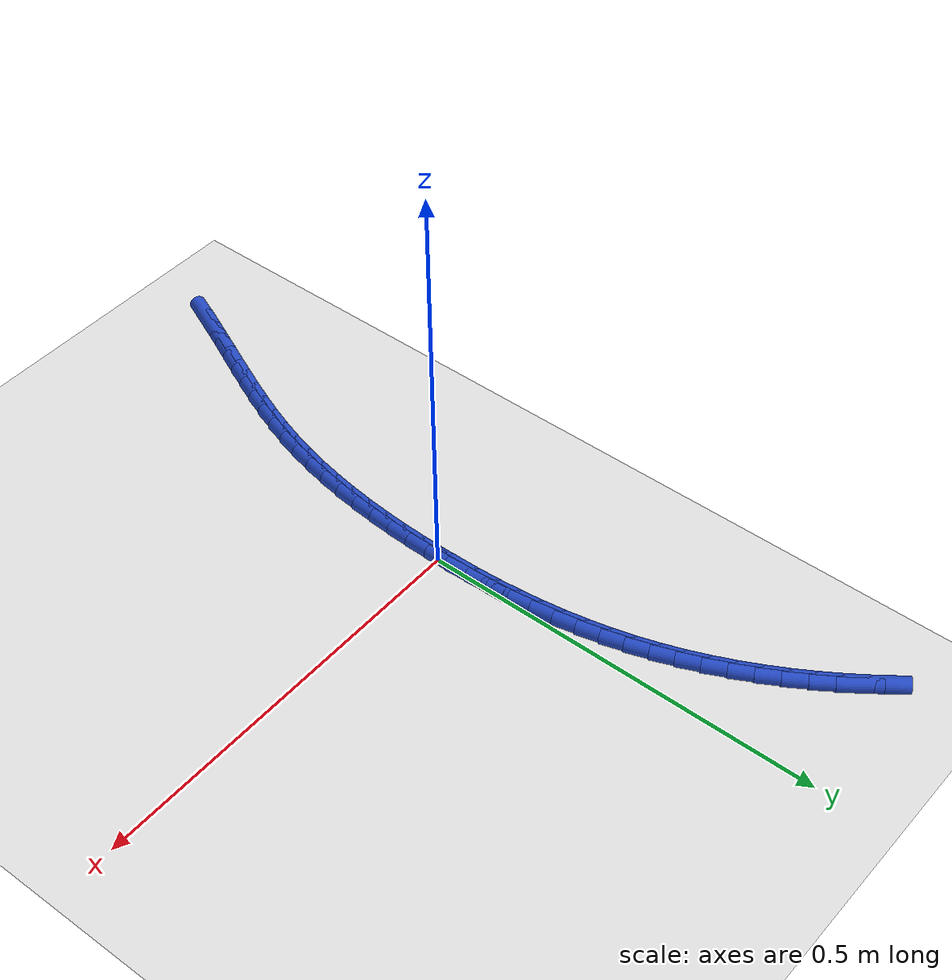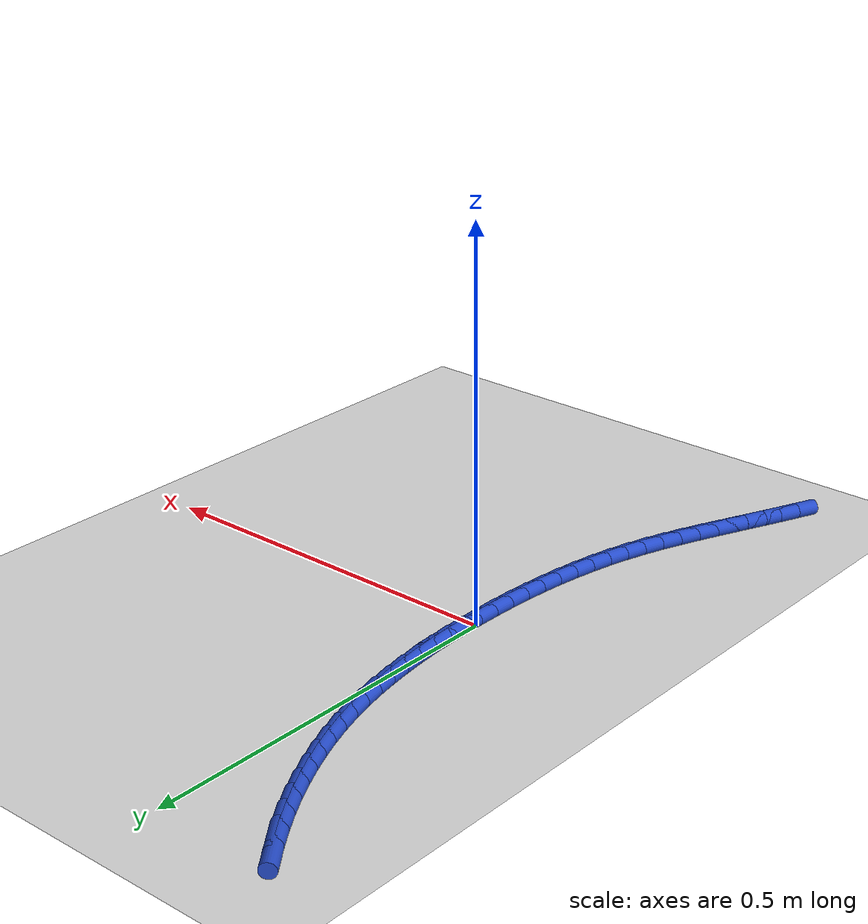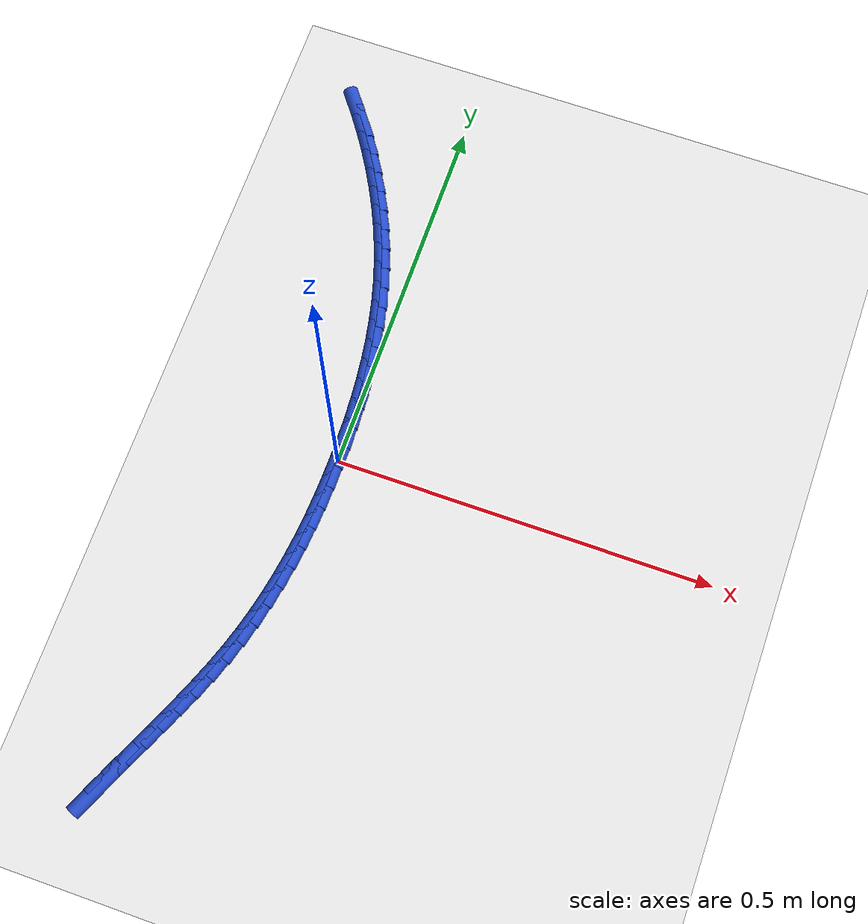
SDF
<sdf version="1.6">
 <world name="default">
  <model name="ground_plane">
   <static>1</static>
   <link name="link">
    <collision name="collision">
     <geometry><plane><normal>0 0 1</normal><size>100 100</size></plane></geometry>
     <surface><friction><ode><mu>100</mu><mu2>50</mu2></ode></friction></surface>
    </collision>
    <visual name="visual">
     <cast_shadows>0</cast_shadows>
     <geometry><plane><normal>0 0 1</normal><size>100 100</size></plane></geometry>
     <material>
      <script><uri>file://media/materials/scripts/gazebo.material</uri><name>Gazebo/WhiteGlow</name></script>
     </material>
    </visual>
   </link>
  </model>
  <model name="line">
   <link name="link_0">
    <pose>-6.938893903907228e-18 -1.3877787807814457e-17 0.01 0 1.57 -1.5612643163533644</pose>
    <collision name="collision">
     <geometry><cylinder><radius>0.01</radius><length>0.08</length></cylinder></geometry>
    </collision>
    <visual name="visual">
     <material>
      <script><name>Gazebo/Blue</name><uri>file://media/materials/scripts/gazebo.material</uri></script>
     </material>
     <geometry><cylinder><radius>0.01</radius><length>0.08</length></cylinder></geometry>
    </visual>
   </link>
   <link name="link_1">
    <pose>-0.00027130869325891474 0.028462041445249442 0.01 0 1.57 -1.5373945248930927</pose>
    <collision name="collision">
     <geometry><cylinder><radius>0.01</radius><length>0.08</length></cylinder></geometry>
    </collision>
    <visual name="visual">
     <material>
      <script><name>Gazebo/Blue</name><uri>file://media/materials/scripts/gazebo.material</uri></script>
     </material>
     <geometry><cylinder><radius>0.01</radius><length>0.08</length></cylinder></geometry>
    </visual>
   </link>
   <link name="link_2">
    <pose>-0.0012205438768052683 0.05687015384956497 0.01 0 1.57 -1.5113053776381165</pose>
    <collision name="collision">
     <geometry><cylinder><radius>0.01</radius><length>0.08</length></cylinder></geometry>
    </collision>
    <visual name="visual">
     <material>
      <script><name>Gazebo/Blue</name><uri>file://media/materials/scripts/gazebo.material</uri></script>
     </material>
     <geometry><cylinder><radius>0.01</radius><length>0.08</length></cylinder></geometry>
    </visual>
   </link>
   <link name="link_3">
    <pose>-0.002907398803572792 0.08519151125153555 0.01 0 1.57 -1.4829375800047557</pose>
    <collision name="collision">
     <geometry><cylinder><radius>0.01</radius><length>0.08</length></cylinder></geometry>
    </collision>
    <visual name="visual">
     <material>
      <script><name>Gazebo/Blue</name><uri>file://media/materials/scripts/gazebo.material</uri></script>
     </material>
     <geometry><cylinder><radius>0.01</radius><length>0.08</length></cylinder></geometry>
    </visual>
   </link>
   <link name="link_4">
    <pose>-0.005391566726495208 0.1133932876897502 0.01 0 1.57 -1.4522373443009398</pose>
    <collision name="collision">
     <geometry><cylinder><radius>0.01</radius><length>0.08</length></cylinder></geometry>
    </collision>
    <visual name="visual">
     <material>
      <script><name>Gazebo/Blue</name><uri>file://media/materials/scripts/gazebo.material</uri></script>
     </material>
     <geometry><cylinder><radius>0.01</radius><length>0.08</length></cylinder></geometry>
    </visual>
   </link>
   <link name="link_5">
    <pose>-0.008732740898506248 0.14144265720279794 0.01 0 1.57 -1.41916093189884</pose>
    <collision name="collision">
     <geometry><cylinder><radius>0.01</radius><length>0.08</length></cylinder></geometry>
    </collision>
    <visual name="visual">
     <material>
      <script><name>Gazebo/Blue</name><uri>file://media/materials/scripts/gazebo.material</uri></script>
     </material>
     <geometry><cylinder><radius>0.01</radius><length>0.08</length></cylinder></geometry>
    </visual>
   </link>
   <link name="link_6">
    <pose>-0.012990614572539635 0.16930679382926783 0.01 0 1.57 -1.3836799098387143</pose>
    <collision name="collision">
     <geometry><cylinder><radius>0.01</radius><length>0.08</length></cylinder></geometry>
    </collision>
    <visual name="visual">
     <material>
      <script><name>Gazebo/Blue</name><uri>file://media/materials/scripts/gazebo.material</uri></script>
     </material>
     <geometry><cylinder><radius>0.01</radius><length>0.08</length></cylinder></geometry>
    </visual>
   </link>
   <link name="link_7">
    <pose>-0.01822488100152909 0.19695287160774877 0.01 0 1.57 -1.3457870482247185</pose>
    <collision name="collision">
     <geometry><cylinder><radius>0.01</radius><length>0.08</length></cylinder></geometry>
    </collision>
    <visual name="visual">
     <material>
      <script><name>Gazebo/Blue</name><uri>file://media/materials/scripts/gazebo.material</uri></script>
     </material>
     <geometry><cylinder><radius>0.01</radius><length>0.08</length></cylinder></geometry>
    </visual>
   </link>
   <link name="link_8">
    <pose>-0.024495233438408336 0.22434806457682985 0.01 0 1.57 -1.305502673380487</pose>
    <collision name="collision">
     <geometry><cylinder><radius>0.01</radius><length>0.08</length></cylinder></geometry>
    </collision>
    <visual name="visual">
     <material>
      <script><name>Gazebo/Blue</name><uri>file://media/materials/scripts/gazebo.material</uri></script>
     </material>
     <geometry><cylinder><radius>0.01</radius><length>0.08</length></cylinder></geometry>
    </visual>
   </link>
   <link name="link_9">
    <pose>-0.03186136513611111 0.25145954677509996 0.01 0 1.57 -1.2631181528108952</pose>
    <collision name="collision">
     <geometry><cylinder><radius>0.01</radius><length>0.08</length></cylinder></geometry>
    </collision>
    <visual name="visual">
     <material>
      <script><name>Gazebo/Blue</name><uri>file://media/materials/scripts/gazebo.material</uri></script>
     </material>
     <geometry><cylinder><radius>0.01</radius><length>0.08</length></cylinder></geometry>
    </visual>
   </link>
   <link name="link_10">
    <pose>-0.040376124784414734 0.27825495685794466 0.01 0 1.57 -1.2209208079159697</pose>
    <collision name="collision">
     <geometry><cylinder><radius>0.01</radius><length>0.08</length></cylinder></geometry>
    </collision>
    <visual name="visual">
     <material>
      <script><name>Gazebo/Blue</name><uri>file://media/materials/scripts/gazebo.material</uri></script>
     </material>
     <geometry><cylinder><radius>0.01</radius><length>0.08</length></cylinder></geometry>
    </visual>
   </link>
   <link name="link_11">
    <pose>-0.05002789106515003 0.3047063097788222 0.01 0 1.57 -1.1801161569599878</pose>
    <collision name="collision">
     <geometry><cylinder><radius>0.01</radius><length>0.08</length></cylinder></geometry>
    </collision>
    <visual name="visual">
     <material>
      <script><name>Gazebo/Blue</name><uri>file://media/materials/scripts/gazebo.material</uri></script>
     </material>
     <geometry><cylinder><radius>0.01</radius><length>0.08</length></cylinder></geometry>
    </visual>
   </link>
   <link name="link_12">
    <pose>-0.060769650710284534 0.3307880229373348 0.01 0 1.57 -1.1406677091465236</pose>
    <collision name="collision">
     <geometry><cylinder><radius>0.01</radius><length>0.08</length></cylinder></geometry>
    </collision>
    <visual name="visual">
     <material>
      <script><name>Gazebo/Blue</name><uri>file://media/materials/scripts/gazebo.material</uri></script>
     </material>
     <geometry><cylinder><radius>0.01</radius><length>0.08</length></cylinder></geometry>
    </visual>
   </link>
   <link name="link_13">
    <pose>-0.07255402562769962 0.35647453849776206 0.01 0 1.57 -1.102513482948305</pose>
    <collision name="collision">
     <geometry><cylinder><radius>0.01</radius><length>0.08</length></cylinder></geometry>
    </collision>
    <visual name="visual">
     <material>
      <script><name>Gazebo/Blue</name><uri>file://media/materials/scripts/gazebo.material</uri></script>
     </material>
     <geometry><cylinder><radius>0.01</radius><length>0.08</length></cylinder></geometry>
    </visual>
   </link>
   <link name="link_14">
    <pose>-0.08533363772527677 0.3817402986243835 0.01 0 1.57 -1.065581280114113</pose>
    <collision name="collision">
     <geometry><cylinder><radius>0.01</radius><length>0.08</length></cylinder></geometry>
    </collision>
    <visual name="visual">
     <material>
      <script><name>Gazebo/Blue</name><uri>file://media/materials/scripts/gazebo.material</uri></script>
     </material>
     <geometry><cylinder><radius>0.01</radius><length>0.08</length></cylinder></geometry>
    </visual>
   </link>
   <link name="link_15">
    <pose>-0.09906110891089742 0.4065597454814788 0.01 0 1.57 -1.029790951482598</pose>
    <collision name="collision">
     <geometry><cylinder><radius>0.01</radius><length>0.08</length></cylinder></geometry>
    </collision>
    <visual name="visual">
     <material>
      <script><name>Gazebo/Blue</name><uri>file://media/materials/scripts/gazebo.material</uri></script>
     </material>
     <geometry><cylinder><radius>0.01</radius><length>0.08</length></cylinder></geometry>
    </visual>
   </link>
   <link name="link_16">
    <pose>-0.11368906109244299 0.4309073212333273 0.01 0 1.57 -0.9950562739901385</pose>
    <collision name="collision">
     <geometry><cylinder><radius>0.01</radius><length>0.08</length></cylinder></geometry>
    </collision>
    <visual name="visual">
     <material>
      <script><name>Gazebo/Blue</name><uri>file://media/materials/scripts/gazebo.material</uri></script>
     </material>
     <geometry><cylinder><radius>0.01</radius><length>0.08</length></cylinder></geometry>
    </visual>
   </link>
   <link name="link_17">
    <pose>-0.12917011617779495 0.4547574680442089 0.01 0 1.57 -0.961286447997593</pose>
    <collision name="collision">
     <geometry><cylinder><radius>0.01</radius><length>0.08</length></cylinder></geometry>
    </collision>
    <visual name="visual">
     <material>
      <script><name>Gazebo/Blue</name><uri>file://media/materials/scripts/gazebo.material</uri></script>
     </material>
     <geometry><cylinder><radius>0.01</radius><length>0.08</length></cylinder></geometry>
    </visual>
   </link>
   <link name="link_18">
    <pose>-0.14545689607483472 0.478084628078403 0.01 0 1.57 -0.9283872384600935</pose>
    <collision name="collision">
     <geometry><cylinder><radius>0.01</radius><length>0.08</length></cylinder></geometry>
    </collision>
    <visual name="visual">
     <material>
      <script><name>Gazebo/Blue</name><uri>file://media/materials/scripts/gazebo.material</uri></script>
     </material>
     <geometry><cylinder><radius>0.01</radius><length>0.08</length></cylinder></geometry>
    </visual>
   </link>
   <link name="link_222">
    <pose>-0.12786704819129194 -0.4855234468395833 0.01 0 1.57 1.1594704085933298</pose>
    <collision name="collision">
     <geometry><cylinder><radius>0.01</radius><length>0.08</length></cylinder></geometry>
    </collision>
    <visual name="visual">
     <material>
      <script><name>Gazebo/Blue</name><uri>file://media/materials/scripts/gazebo.material</uri></script>
     </material>
     <geometry><cylinder><radius>0.01</radius><length>0.08</length></cylinder></geometry>
    </visual>
   </link>
   <link name="link_223">
    <pose>-0.11643051819723264 -0.45930541147219056 0.01 0 1.57 1.1493584849843153</pose>
    <collision name="collision">
     <geometry><cylinder><radius>0.01</radius><length>0.08</length></cylinder></geometry>
    </collision>
    <visual name="visual">
     <material>
      <script><name>Gazebo/Blue</name><uri>file://media/materials/scripts/gazebo.material</uri></script>
     </material>
     <geometry><cylinder><radius>0.01</radius><length>0.08</length></cylinder></geometry>
    </visual>
   </link>
   <link name="link_224">
    <pose>-0.10479128431467756 -0.4333422628470863 0.01 0 1.57 1.145861461112331</pose>
    <collision name="collision">
     <geometry><cylinder><radius>0.01</radius><length>0.08</length></cylinder></geometry>
    </collision>
    <visual name="visual">
     <material>
      <script><name>Gazebo/Blue</name><uri>file://media/materials/scripts/gazebo.material</uri></script>
     </material>
     <geometry><cylinder><radius>0.01</radius><length>0.08</length></cylinder></geometry>
    </visual>
   </link>
   <link name="link_225">
    <pose>-0.09311924097720777 -0.40754795864934923 0.01 0 1.57 1.149082045293313</pose>
    <collision name="collision">
     <geometry><cylinder><radius>0.01</radius><length>0.08</length></cylinder></geometry>
    </collision>
    <visual name="visual">
     <material>
      <script><name>Gazebo/Blue</name><uri>file://media/materials/scripts/gazebo.material</uri></script>
     </material>
     <geometry><cylinder><radius>0.01</radius><length>0.08</length></cylinder></geometry>
    </visual>
   </link>
   <link name="link_226">
    <pose>-0.08158428261840468 -0.38183645656405946 0.01 0 1.57 1.159111415374169</pose>
    <collision name="collision">
     <geometry><cylinder><radius>0.01</radius><length>0.08</length></cylinder></geometry>
    </collision>
    <visual name="visual">
     <material>
      <script><name>Gazebo/Blue</name><uri>file://media/materials/scripts/gazebo.material</uri></script>
     </material>
     <geometry><cylinder><radius>0.01</radius><length>0.08</length></cylinder></geometry>
    </visual>
   </link>
   <link name="link_227">
    <pose>-0.07035630367184964 -0.3561217142762964 0.01 0 1.57 1.1760240919186762</pose>
    <collision name="collision">
     <geometry><cylinder><radius>0.01</radius><length>0.08</length></cylinder></geometry>
    </collision>
    <visual name="visual">
     <material>
      <script><name>Gazebo/Blue</name><uri>file://media/materials/scripts/gazebo.material</uri></script>
     </material>
     <geometry><cylinder><radius>0.01</radius><length>0.08</length></cylinder></geometry>
    </visual>
   </link>
   <link name="link_228">
    <pose>-0.05960519857112399 -0.33031768947113976 0.01 0 1.57 1.199863030072989</pose>
    <collision name="collision">
     <geometry><cylinder><radius>0.01</radius><length>0.08</length></cylinder></geometry>
    </collision>
    <visual name="visual">
     <material>
      <script><name>Gazebo/Blue</name><uri>file://media/materials/scripts/gazebo.material</uri></script>
     </material>
     <geometry><cylinder><radius>0.01</radius><length>0.08</length></cylinder></geometry>
    </visual>
   </link>
   <link name="link_229">
    <pose>-0.04950086174980914 -0.3043383398336695 0.01 0 1.57 1.2306146274311431</pose>
    <collision name="collision">
     <geometry><cylinder><radius>0.01</radius><length>0.08</length></cylinder></geometry>
    </collision>
    <visual name="visual">
     <material>
      <script><name>Gazebo/Blue</name><uri>file://media/materials/scripts/gazebo.material</uri></script>
     </material>
     <geometry><cylinder><radius>0.01</radius><length>0.08</length></cylinder></geometry>
    </visual>
   </link>
   <link name="link_230">
    <pose>-0.040213187641486195 -0.2780976230489644 0.01 0 1.57 1.2681435128704102</pose>
    <collision name="collision">
     <geometry><cylinder><radius>0.01</radius><length>0.08</length></cylinder></geometry>
    </collision>
    <visual name="visual">
     <material>
      <script><name>Gazebo/Blue</name><uri>file://media/materials/scripts/gazebo.material</uri></script>
     </material>
     <geometry><cylinder><radius>0.01</radius><length>0.08</length></cylinder></geometry>
    </visual>
   </link>
   <link name="link_231">
    <pose>-0.03191131111209708 -0.25150994834475615 0.01 0 1.57 1.3092625500028083</pose>
    <collision name="collision">
     <geometry><cylinder><radius>0.01</radius><length>0.08</length></cylinder></geometry>
    </collision>
    <visual name="visual">
     <material>
      <script><name>Gazebo/Blue</name><uri>file://media/materials/scripts/gazebo.material</uri></script>
     </material>
     <geometry><cylinder><radius>0.01</radius><length>0.08</length></cylinder></geometry>
    </visual>
   </link>
   <link name="link_232">
    <pose>-0.024690680610321824 -0.224533529553388 0.01 0 1.57 1.3484527644136772</pose>
    <collision name="collision">
     <geometry><cylinder><radius>0.01</radius><length>0.08</length></cylinder></geometry>
    </collision>
    <visual name="visual">
     <material>
      <script><name>Gazebo/Blue</name><uri>file://media/materials/scripts/gazebo.material</uri></script>
     </material>
     <geometry><cylinder><radius>0.01</radius><length>0.08</length></cylinder></geometry>
    </visual>
   </link>
   <link name="link_233">
    <pose>-0.01851251734037663 -0.19720637501466973 0.01 0 1.57 1.385174437843338</pose>
    <collision name="collision">
     <geometry><cylinder><radius>0.01</radius><length>0.08</length></cylinder></geometry>
    </collision>
    <visual name="visual">
     <material>
      <script><name>Gazebo/Blue</name><uri>file://media/materials/scripts/gazebo.material</uri></script>
     </material>
     <geometry><cylinder><radius>0.01</radius><length>0.08</length></cylinder></geometry>
    </visual>
   </link>
   <link name="link_234">
    <pose>-0.013323792052951927 -0.1695749645819601 0.01 0 1.57 1.4194897785279967</pose>
    <collision name="collision">
     <geometry><cylinder><radius>0.01</radius><length>0.08</length></cylinder></geometry>
    </collision>
    <visual name="visual">
     <material>
      <script><name>Gazebo/Blue</name><uri>file://media/materials/scripts/gazebo.material</uri></script>
     </material>
     <geometry><cylinder><radius>0.01</radius><length>0.08</length></cylinder></geometry>
    </visual>
   </link>
   <link name="link_235">
    <pose>-0.009071475498738194 -0.1416857781086186 0.01 0 1.57 1.45147688598129</pose>
    <collision name="collision">
     <geometry><cylinder><radius>0.01</radius><length>0.08</length></cylinder></geometry>
    </collision>
    <visual name="visual">
     <material>
      <script><name>Gazebo/Blue</name><uri>file://media/materials/scripts/gazebo.material</uri></script>
     </material>
     <geometry><cylinder><radius>0.01</radius><length>0.08</length></cylinder></geometry>
    </visual>
   </link>
   <link name="link_236">
    <pose>-0.005702538428425879 -0.11358529544800414 0.01 0 1.57 1.4812238097991444</pose>
    <collision name="collision">
     <geometry><cylinder><radius>0.01</radius><length>0.08</length></cylinder></geometry>
    </collision>
    <visual name="visual">
     <material>
      <script><name>Gazebo/Blue</name><uri>file://media/materials/scripts/gazebo.material</uri></script>
     </material>
     <geometry><cylinder><radius>0.01</radius><length>0.08</length></cylinder></geometry>
    </visual>
   </link>
   <link name="link_237">
    <pose>-0.0031639515927054463 -0.08531999645347599 0.01 0 1.57 1.5088236280236045</pose>
    <collision name="collision">
     <geometry><cylinder><radius>0.01</radius><length>0.08</length></cylinder></geometry>
    </collision>
    <visual name="visual">
     <material>
      <script><name>Gazebo/Blue</name><uri>file://media/materials/scripts/gazebo.material</uri></script>
     </material>
     <geometry><cylinder><radius>0.01</radius><length>0.08</length></cylinder></geometry>
    </visual>
   </link>
   <link name="link_238">
    <pose>-0.0014026857422673154 -0.05693636097839255 0.01 0 1.57 1.5343704784414431</pose>
    <collision name="collision">
     <geometry><cylinder><radius>0.01</radius><length>0.08</length></cylinder></geometry>
    </collision>
    <visual name="visual">
     <material>
      <script><name>Gazebo/Blue</name><uri>file://media/materials/scripts/gazebo.material</uri></script>
     </material>
     <geometry><cylinder><radius>0.01</radius><length>0.08</length></cylinder></geometry>
    </visual>
   </link>
   <link name="link_239">
    <pose>-0.0003657116278020381 -0.028480868876114458 0.01 0 1.57 1.5579564260275849</pose>
    <collision name="collision">
     <geometry><cylinder><radius>0.01</radius><length>0.08</length></cylinder></geometry>
    </collision>
    <visual name="visual">
     <material>
      <script><name>Gazebo/Blue</name><uri>file://media/materials/scripts/gazebo.material</uri></script>
     </material>
     <geometry><cylinder><radius>0.01</radius><length>0.08</length></cylinder></geometry>
    </visual>
   </link>
   <link name="link_240">
    <pose>-1.7780915628762273e-17 -1.8735013540549517e-16 0.01 0 1.57 -1.5619236261286582</pose>
    <collision name="collision">
     <geometry><cylinder><radius>0.01</radius><length>0.08</length></cylinder></geometry>
    </collision>
    <visual name="visual">
     <material>
      <script><name>Gazebo/Blue</name><uri>file://media/materials/scripts/gazebo.material</uri></script>
     </material>
     <geometry><cylinder><radius>0.01</radius><length>0.08</length></cylinder></geometry>
    </visual>
   </link>
   <link name="link_241">
    <pose>-0.0002525216095517098 0.028459765796591135 0.01 0 1.57 -1.542003203975937</pose>
    <collision name="collision">
     <geometry><cylinder><radius>0.01</radius><length>0.08</length></cylinder></geometry>
    </collision>
    <visual name="visual">
     <material>
      <script><name>Gazebo/Blue</name><uri>file://media/materials/scripts/gazebo.material</uri></script>
     </material>
     <geometry><cylinder><radius>0.01</radius><length>0.08</length></cylinder></geometry>
    </visual>
   </link>
   <link name="link_242">
    <pose>-0.0010702472071475759 0.05685194866030037 0.01 0 1.57 -1.5519733869996688</pose>
    <collision name="collision">
     <geometry><cylinder><radius>0.01</radius><length>0.08</length></cylinder></geometry>
    </collision>
    <visual name="visual">
     <material>
      <script><name>Gazebo/Blue</name><uri>file://media/materials/scripts/gazebo.material</uri></script>
     </material>
     <geometry><cylinder><radius>0.01</radius><length>0.08</length></cylinder></geometry>
    </visual>
   </link>
  </model>
 </world>
</sdf>
